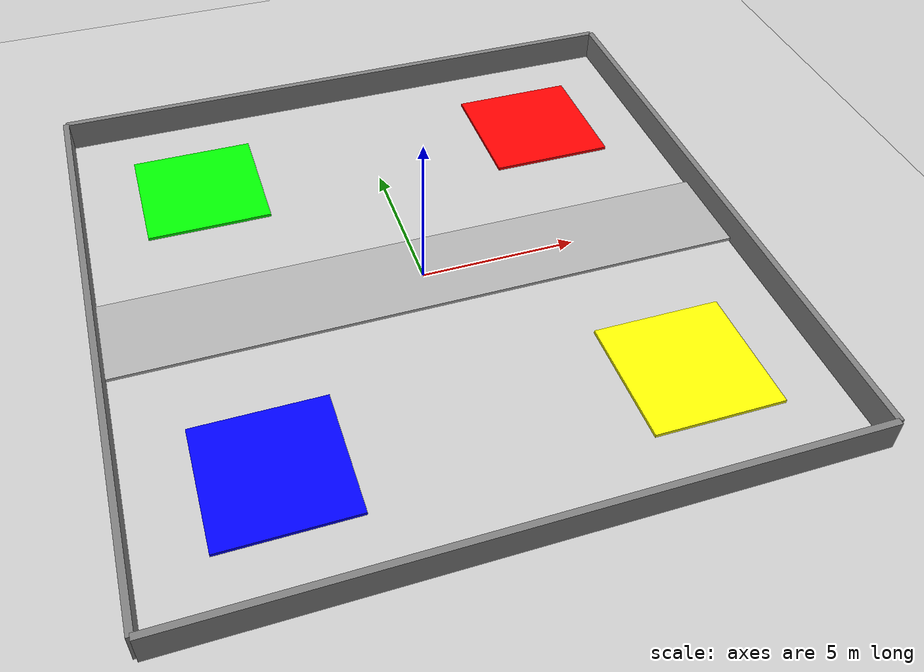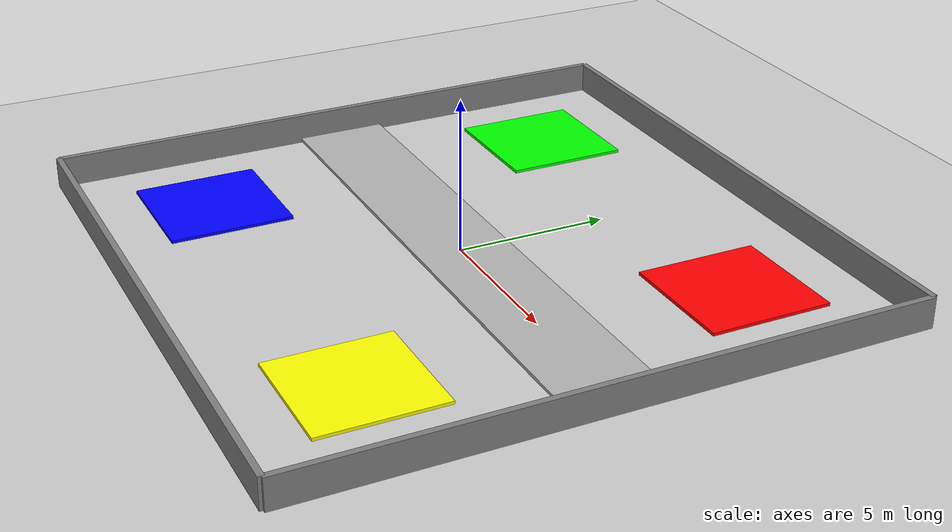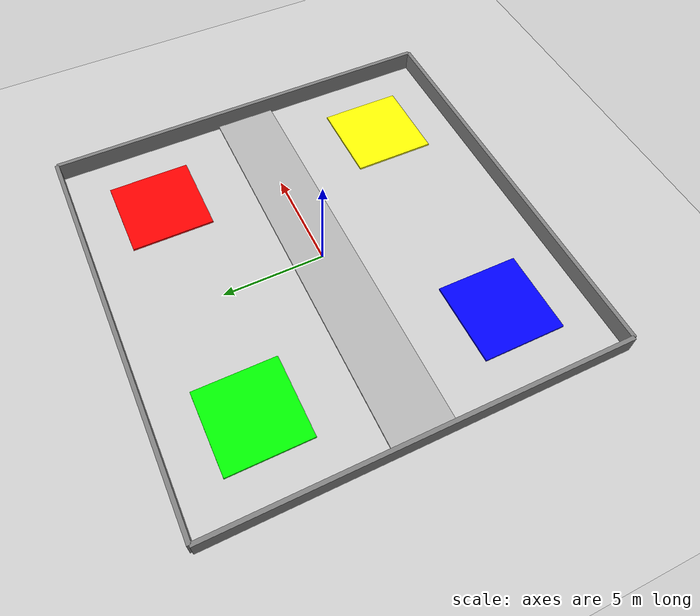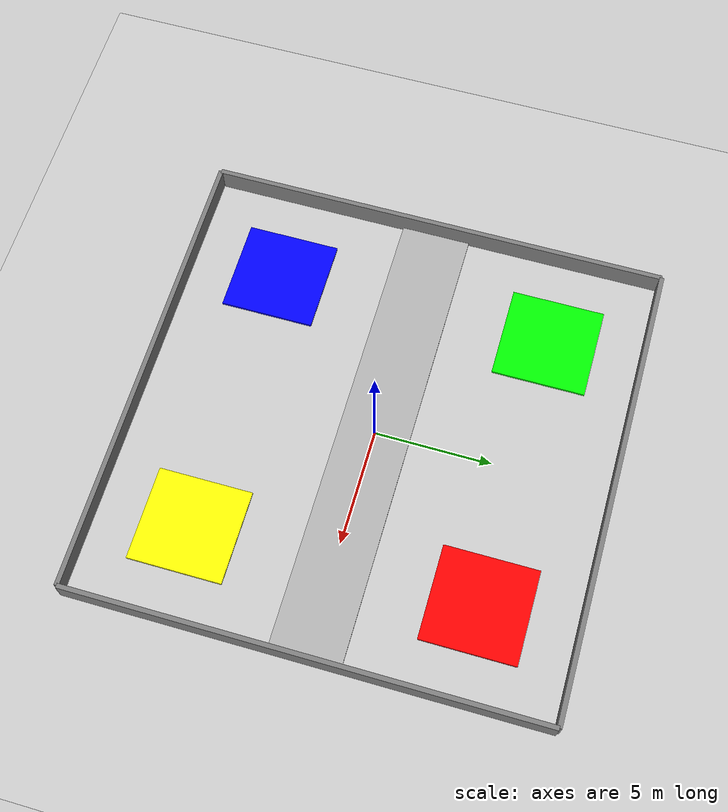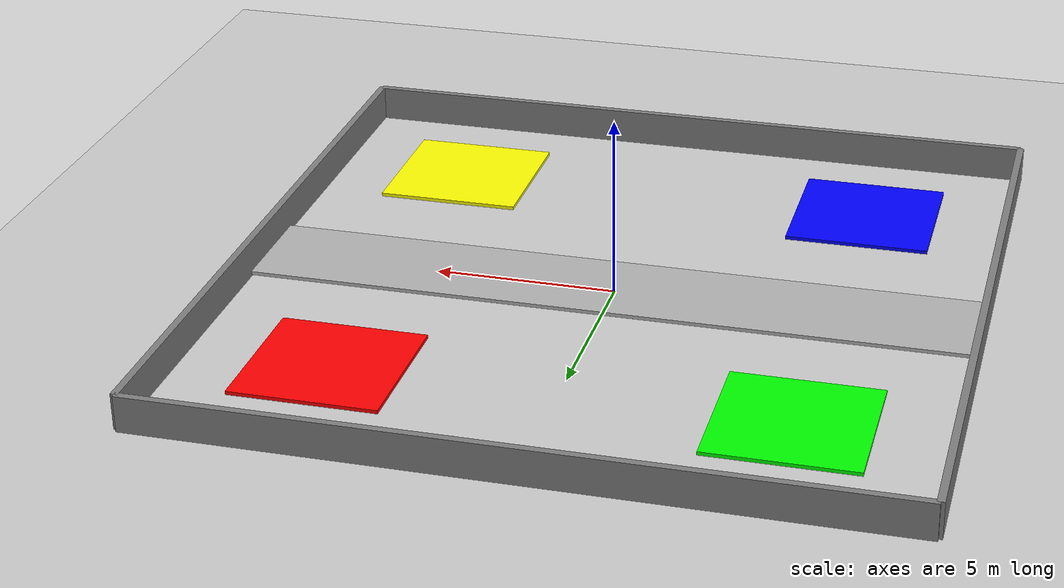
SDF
<?xml version="1.0" ?>
<sdf version="1.6">
  <world name="hospital_4rooms">
    <include><uri>model://ground_plane</uri></include>
    <include><uri>model://sun</uri></include>

    <!-- PHARMACY (NW) - GREEN -->
    <model name="pharmacy"><static>true</static><pose>-6 6 0.2 0 0 0</pose>
      <link name="link"><visual name="v"><geometry><box><size>4 4 0.1</size></box></geometry>
      <material><ambient>0 1 0 1</ambient></material></visual></link>
    </model>

    <!-- ICU (NE) - RED -->
    <model name="icu"><static>true</static><pose>6 6 0.2 0 0 0</pose>
      <link name="link"><visual name="v"><geometry><box><size>4 4 0.1</size></box></geometry>
      <material><ambient>1 0 0 1</ambient></material></visual></link>
    </model>

    <!-- RECEPTION (SW) - BLUE -->
    <model name="reception"><static>true</static><pose>-6 -6 0.2 0 0 0</pose>
      <link name="link"><visual name="v"><geometry><box><size>4 4 0.1</size></box></geometry>
      <material><ambient>0 0 1 1</ambient></material></visual></link>
    </model>

    <!-- WARD (SE) - YELLOW -->
    <model name="ward"><static>true</static><pose>6 -6 0.2 0 0 0</pose>
      <link name="link"><visual name="v"><geometry><box><size>4 4 0.1</size></box></geometry>
      <material><ambient>1 1 0 1</ambient></material></visual></link>
    </model>

    <!-- CORRIDOR (center) - GRAY -->
    <model name="corridor"><static>true</static><pose>0 0 0.1 0 0 0</pose>
      <link name="link"><visual name="v"><geometry><box><size>20 3 0.1</size></box></geometry>
      <material><ambient>0.7 0.7 0.7 1</ambient></material></visual></link>
    </model>

    <!-- SIMPLE WALLS -->
    <model name="wall_left"><static>true</static><pose>-10 0 0.5 0 0 0</pose>
      <link name="link"><visual name="v"><geometry><box><size>0.2 20 1</size></box></geometry>
      <material><ambient>0.5 0.5 0.5 1</ambient></material></visual></link>
    </model>
    <model name="wall_right"><static>true</static><pose>10 0 0.5 0 0 0</pose>
      <link name="link"><visual name="v"><geometry><box><size>0.2 20 1</size></box></geometry>
      <material><ambient>0.5 0.5 0.5 1</ambient></material></visual></link>
    </model>
    <model name="wall_top"><static>true</static><pose>0 10 0.5 0 0 0</pose>
      <link name="link"><visual name="v"><geometry><box><size>20 0.2 1</size></box></geometry>
      <material><ambient>0.5 0.5 0.5 1</ambient></material></visual></link>
    </model>
    <model name="wall_bottom"><static>true</static><pose>0 -10 0.5 0 0 0</pose>
      <link name="link"><visual name="v"><geometry><box><size>20 0.2 1</size></box></geometry>
      <material><ambient>0.5 0.5 0.5 1</ambient></material></visual></link>
    </model>

  </world>
</sdf>
